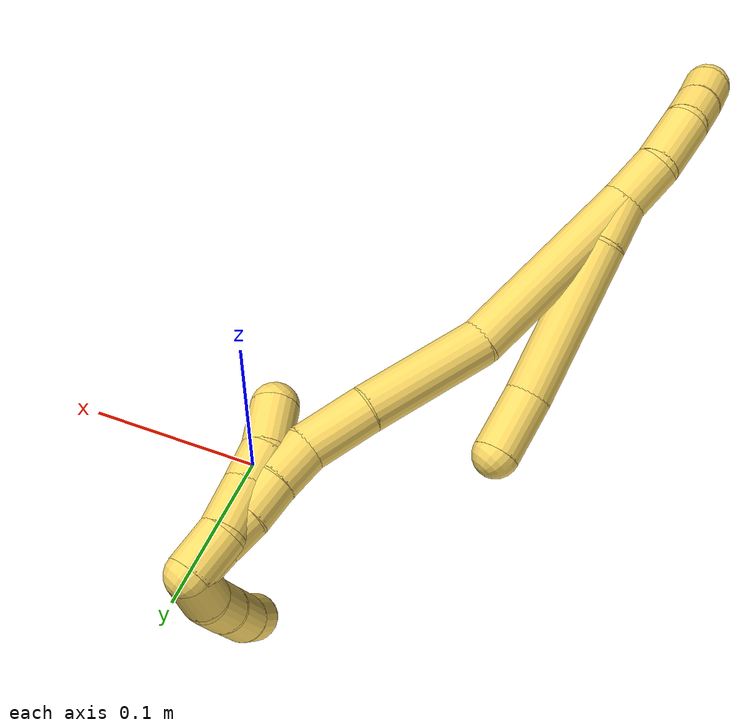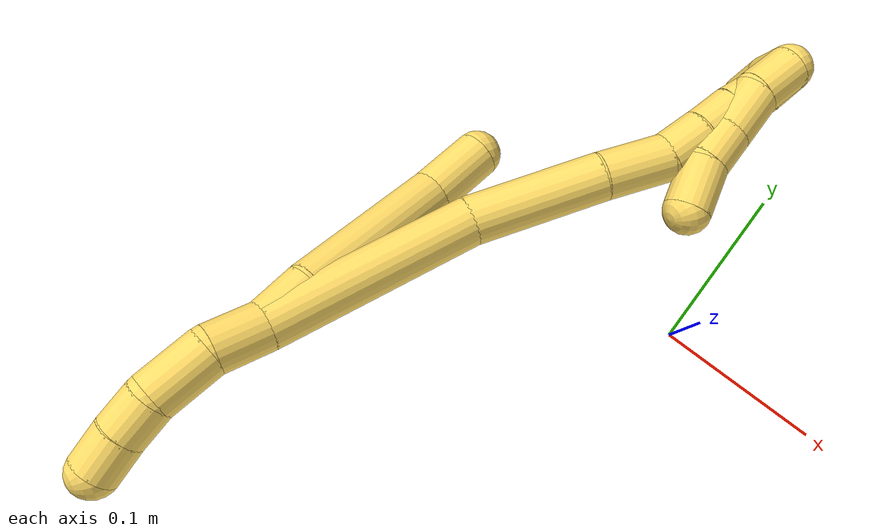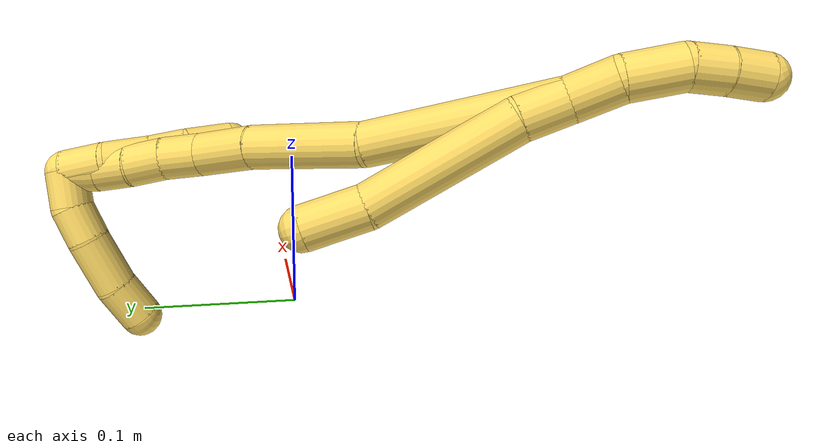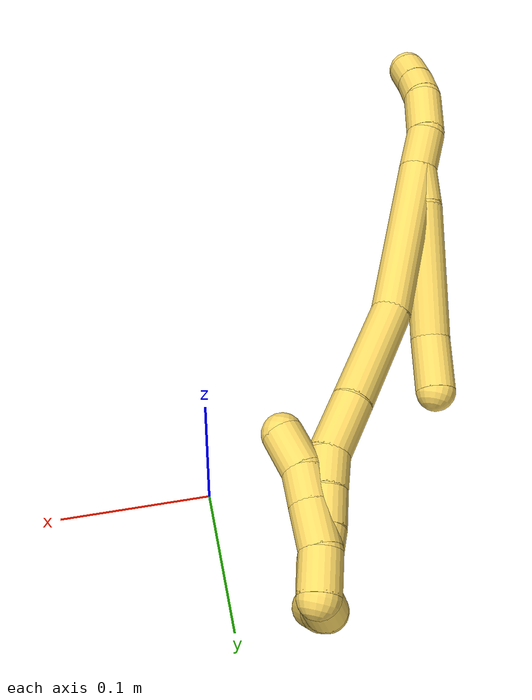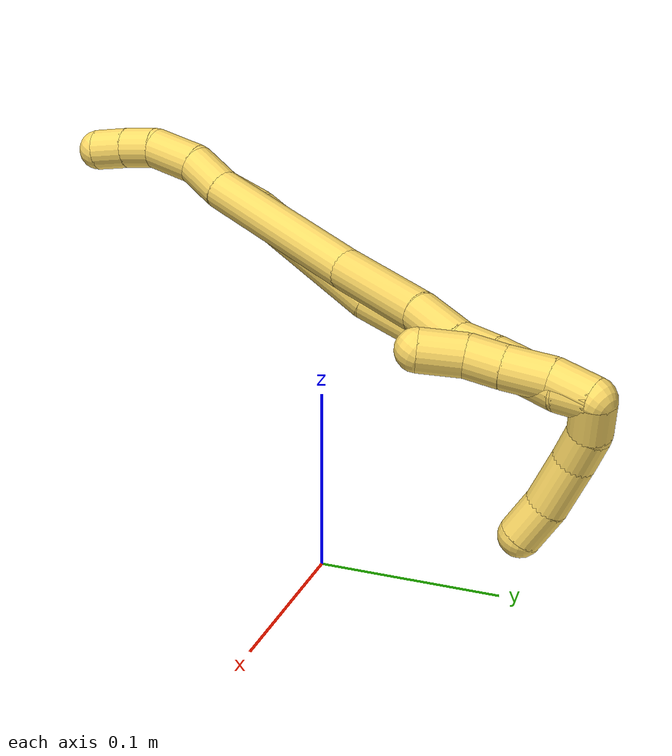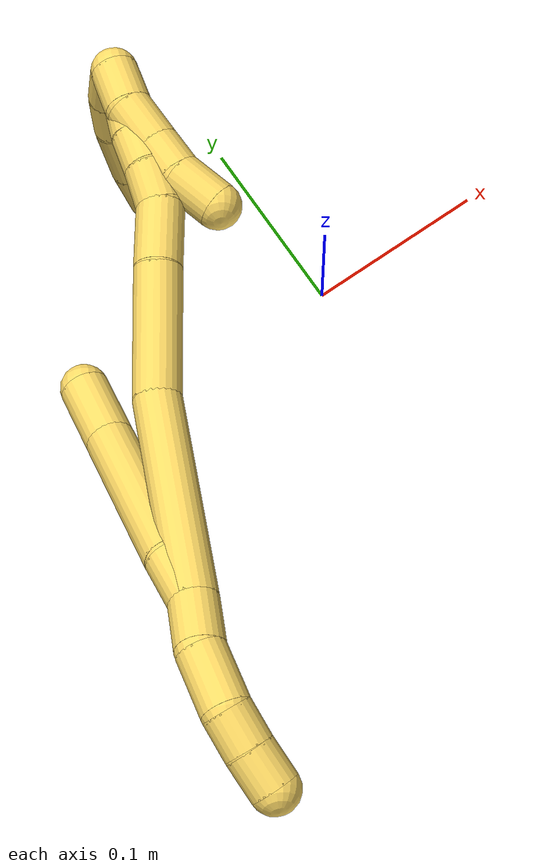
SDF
<sdf version="1.7">
 <world name="default">
  <model name="5">
   <static>0</static>
   <link name="5">
    <collision name="collision-cylinder-e_1_2_8">
     <pose>-0.001141 0.003748 -0.012857 -2.85793 -0.085017 0.579016</pose>
     <geometry><cylinder><radius>0.0125</radius><length>0.026881</length></cylinder></geometry>
     <surface>
      <friction><ode><mu>1.16</mu><mu2>1.16</mu2><slip1>0</slip1><slip2>0</slip2></ode></friction>
      <contact><ode><kp>1e+06</kp><kd>1</kd><max_vel>0</max_vel><min_depth>0.001</min_depth></ode></contact>
     </surface>
    </collision>
    <visual name="visual-cylinder-e_1_2_8">
     <pose>-0.001141 0.003748 -0.012857 -2.85793 -0.085017 0.579016</pose>
     <geometry><cylinder><radius>0.0125</radius><length>0.026881</length></cylinder></geometry>
     <material><ambient>1 0.858824 0.4 1</ambient></material>
    </visual>
    <collision name="collision-cylinder-e_2_8_9">
     <pose>-0.01193 0.014786 -0.068 -2.97087 -0.221148 1.82837</pose>
     <geometry><cylinder><radius>0.0125</radius><length>0.087961</length></cylinder></geometry>
     <surface>
      <friction><ode><mu>1.16</mu><mu2>1.16</mu2><slip1>0</slip1><slip2>0</slip2></ode></friction>
      <contact><ode><kp>1e+06</kp><kd>1</kd><max_vel>0</max_vel><min_depth>0.001</min_depth></ode></contact>
     </surface>
    </collision>
    <visual name="visual-cylinder-e_2_8_9">
     <pose>-0.01193 0.014786 -0.068 -2.97087 -0.221148 1.82837</pose>
     <geometry><cylinder><radius>0.0125</radius><length>0.087961</length></cylinder></geometry>
     <material><ambient>1 0.858824 0.4 1</ambient></material>
    </visual>
    <collision name="collision-cylinder-e_3_9_6">
     <pose>-0.022236 0.026588 -0.127263 -2.88185 -0.037484 0.285092</pose>
     <geometry><cylinder><radius>0.0125</radius><length>0.035157</length></cylinder></geometry>
     <surface>
      <friction><ode><mu>1.16</mu><mu2>1.16</mu2><slip1>0</slip1><slip2>0</slip2></ode></friction>
      <contact><ode><kp>1e+06</kp><kd>1</kd><max_vel>0</max_vel><min_depth>0.001</min_depth></ode></contact>
     </surface>
    </collision>
    <visual name="visual-cylinder-e_3_9_6">
     <pose>-0.022236 0.026588 -0.127263 -2.88185 -0.037484 0.285092</pose>
     <geometry><cylinder><radius>0.0125</radius><length>0.035157</length></cylinder></geometry>
     <material><ambient>1 0.858824 0.4 1</ambient></material>
    </visual>
    <collision name="collision-cylinder-e_1_2_10">
     <pose>0.000294 0.000391 0.013736 -0.028491 0.021357 -0.000304</pose>
     <geometry><cylinder><radius>0.0125</radius><length>0.027489</length></cylinder></geometry>
     <surface>
      <friction><ode><mu>1.16</mu><mu2>1.16</mu2><slip1>0</slip1><slip2>0</slip2></ode></friction>
      <contact><ode><kp>1e+06</kp><kd>1</kd><max_vel>0</max_vel><min_depth>0.001</min_depth></ode></contact>
     </surface>
    </collision>
    <visual name="visual-cylinder-e_1_2_10">
     <pose>0.000294 0.000391 0.013736 -0.028491 0.021357 -0.000304</pose>
     <geometry><cylinder><radius>0.0125</radius><length>0.027489</length></cylinder></geometry>
     <material><ambient>1 0.858824 0.4 1</ambient></material>
    </visual>
    <collision name="collision-cylinder-e_2_10_11">
     <pose>-0.001081 -0.003388 0.042432 0.271875 -0.107014 -0.014651</pose>
     <geometry><cylinder><radius>0.0125</radius><length>0.031239</length></cylinder></geometry>
     <surface>
      <friction><ode><mu>1.16</mu><mu2>1.16</mu2><slip1>0</slip1><slip2>0</slip2></ode></friction>
      <contact><ode><kp>1e+06</kp><kd>1</kd><max_vel>0</max_vel><min_depth>0.001</min_depth></ode></contact>
     </surface>
    </collision>
    <visual name="visual-cylinder-e_2_10_11">
     <pose>-0.001081 -0.003388 0.042432 0.271875 -0.107014 -0.014651</pose>
     <geometry><cylinder><radius>0.0125</radius><length>0.031239</length></cylinder></geometry>
     <material><ambient>1 0.858824 0.4 1</ambient></material>
    </visual>
    <collision name="collision-cylinder-e_3_11_12">
     <pose>-0.006022 -0.012389 0.065808 0.521114 -0.325274 -0.087441</pose>
     <geometry><cylinder><radius>0.0125</radius><length>0.020483</length></cylinder></geometry>
     <surface>
      <friction><ode><mu>1.16</mu><mu2>1.16</mu2><slip1>0</slip1><slip2>0</slip2></ode></friction>
      <contact><ode><kp>1e+06</kp><kd>1</kd><max_vel>0</max_vel><min_depth>0.001</min_depth></ode></contact>
     </surface>
    </collision>
    <visual name="visual-cylinder-e_3_11_12">
     <pose>-0.006022 -0.012389 0.065808 0.521114 -0.325274 -0.087441</pose>
     <geometry><cylinder><radius>0.0125</radius><length>0.020483</length></cylinder></geometry>
     <material><ambient>1 0.858824 0.4 1</ambient></material>
    </visual>
    <collision name="collision-cylinder-e_4_12_5">
     <pose>-0.012727 -0.022791 0.082301 0.603737 -0.33643 -0.10566</pose>
     <geometry><cylinder><radius>0.0125</radius><length>0.020788</length></cylinder></geometry>
     <surface>
      <friction><ode><mu>1.16</mu><mu2>1.16</mu2><slip1>0</slip1><slip2>0</slip2></ode></friction>
      <contact><ode><kp>1e+06</kp><kd>1</kd><max_vel>0</max_vel><min_depth>0.001</min_depth></ode></contact>
     </surface>
    </collision>
    <visual name="visual-cylinder-e_4_12_5">
     <pose>-0.012727 -0.022791 0.082301 0.603737 -0.33643 -0.10566</pose>
     <geometry><cylinder><radius>0.0125</radius><length>0.020788</length></cylinder></geometry>
     <material><ambient>1 0.858824 0.4 1</ambient></material>
    </visual>
    <collision name="collision-cylinder-e_1_2_13">
     <pose>0.007172 0.002886 -0.054104 -3.08829 0.131606 -2.37281</pose>
     <geometry><cylinder><radius>0.0125</radius><length>0.109306</length></cylinder></geometry>
     <surface>
      <friction><ode><mu>1.16</mu><mu2>1.16</mu2><slip1>0</slip1><slip2>0</slip2></ode></friction>
      <contact><ode><kp>1e+06</kp><kd>1</kd><max_vel>0</max_vel><min_depth>0.001</min_depth></ode></contact>
     </surface>
    </collision>
    <visual name="visual-cylinder-e_1_2_13">
     <pose>0.007172 0.002886 -0.054104 -3.08829 0.131606 -2.37281</pose>
     <geometry><cylinder><radius>0.0125</radius><length>0.109306</length></cylinder></geometry>
     <material><ambient>1 0.858824 0.4 1</ambient></material>
    </visual>
    <collision name="collision-cylinder-e_2_13_14">
     <pose>0.025784 0.00362 -0.141038 3.07612 0.334629 2.75852</pose>
     <geometry><cylinder><radius>0.0125</radius><length>0.069667</length></cylinder></geometry>
     <surface>
      <friction><ode><mu>1.16</mu><mu2>1.16</mu2><slip1>0</slip1><slip2>0</slip2></ode></friction>
      <contact><ode><kp>1e+06</kp><kd>1</kd><max_vel>0</max_vel><min_depth>0.001</min_depth></ode></contact>
     </surface>
    </collision>
    <visual name="visual-cylinder-e_2_13_14">
     <pose>0.025784 0.00362 -0.141038 3.07612 0.334629 2.75852</pose>
     <geometry><cylinder><radius>0.0125</radius><length>0.069667</length></cylinder></geometry>
     <material><ambient>1 0.858824 0.4 1</ambient></material>
    </visual>
    <collision name="collision-cylinder-e_3_14_15">
     <pose>0.041546 -0.000557 -0.191177 3.02514 0.243148 2.25127</pose>
     <geometry><cylinder><radius>0.0125</radius><length>0.035909</length></cylinder></geometry>
     <surface>
      <friction><ode><mu>1.16</mu><mu2>1.16</mu2><slip1>0</slip1><slip2>0</slip2></ode></friction>
      <contact><ode><kp>1e+06</kp><kd>1</kd><max_vel>0</max_vel><min_depth>0.001</min_depth></ode></contact>
     </surface>
    </collision>
    <visual name="visual-cylinder-e_3_14_15">
     <pose>0.041546 -0.000557 -0.191177 3.02514 0.243148 2.25127</pose>
     <geometry><cylinder><radius>0.0125</radius><length>0.035909</length></cylinder></geometry>
     <material><ambient>1 0.858824 0.4 1</ambient></material>
    </visual>
    <collision name="collision-cylinder-e_4_15_16">
     <pose>0.048191 -0.000312 -0.219576 -2.9397 0.202285 -1.57273</pose>
     <geometry><cylinder><radius>0.0125</radius><length>0.023111</length></cylinder></geometry>
     <surface>
      <friction><ode><mu>1.16</mu><mu2>1.16</mu2><slip1>0</slip1><slip2>0</slip2></ode></friction>
      <contact><ode><kp>1e+06</kp><kd>1</kd><max_vel>0</max_vel><min_depth>0.001</min_depth></ode></contact>
     </surface>
    </collision>
    <visual name="visual-cylinder-e_4_15_16">
     <pose>0.048191 -0.000312 -0.219576 -2.9397 0.202285 -1.57273</pose>
     <geometry><cylinder><radius>0.0125</radius><length>0.023111</length></cylinder></geometry>
     <material><ambient>1 0.858824 0.4 1</ambient></material>
    </visual>
    <collision name="collision-cylinder-e_5_16_17">
     <pose>0.05162 0.004189 -0.241162 -2.93216 0.10286 -0.910873</pose>
     <geometry><cylinder><radius>0.0125</radius><length>0.021576</length></cylinder></geometry>
     <surface>
      <friction><ode><mu>1.16</mu><mu2>1.16</mu2><slip1>0</slip1><slip2>0</slip2></ode></friction>
      <contact><ode><kp>1e+06</kp><kd>1</kd><max_vel>0</max_vel><min_depth>0.001</min_depth></ode></contact>
     </surface>
    </collision>
    <visual name="visual-cylinder-e_5_16_17">
     <pose>0.05162 0.004189 -0.241162 -2.93216 0.10286 -0.910873</pose>
     <geometry><cylinder><radius>0.0125</radius><length>0.021576</length></cylinder></geometry>
     <material><ambient>1 0.858824 0.4 1</ambient></material>
    </visual>
    <collision name="collision-cylinder-e_6_17_18">
     <pose>0.054626 0.007638 -0.261533 -3.01881 0.188497 -1.98845</pose>
     <geometry><cylinder><radius>0.0125</radius><length>0.020256</length></cylinder></geometry>
     <surface>
      <friction><ode><mu>1.16</mu><mu2>1.16</mu2><slip1>0</slip1><slip2>0</slip2></ode></friction>
      <contact><ode><kp>1e+06</kp><kd>1</kd><max_vel>0</max_vel><min_depth>0.001</min_depth></ode></contact>
     </surface>
    </collision>
    <visual name="visual-cylinder-e_6_17_18">
     <pose>0.054626 0.007638 -0.261533 -3.01881 0.188497 -1.98845</pose>
     <geometry><cylinder><radius>0.0125</radius><length>0.020256</length></cylinder></geometry>
     <material><ambient>1 0.858824 0.4 1</ambient></material>
    </visual>
    <collision name="collision-cylinder-e_7_18_1">
     <pose>0.059105 0.01174 -0.280722 -2.84144 0.258747 -1.42099</pose>
     <geometry><cylinder><radius>0.0125</radius><length>0.020174</length></cylinder></geometry>
     <surface>
      <friction><ode><mu>1.16</mu><mu2>1.16</mu2><slip1>0</slip1><slip2>0</slip2></ode></friction>
      <contact><ode><kp>1e+06</kp><kd>1</kd><max_vel>0</max_vel><min_depth>0.001</min_depth></ode></contact>
     </surface>
    </collision>
    <visual name="visual-cylinder-e_7_18_1">
     <pose>0.059105 0.01174 -0.280722 -2.84144 0.258747 -1.42099</pose>
     <geometry><cylinder><radius>0.0125</radius><length>0.020174</length></cylinder></geometry>
     <material><ambient>1 0.858824 0.4 1</ambient></material>
    </visual>
    <collision name="collision-cylinder-e_1_1_19">
     <pose>0.050868 0.013033 -0.29195 2.44805 -1.34474 -2.28938</pose>
     <geometry><cylinder><radius>0.0125</radius><length>0.022199</length></cylinder></geometry>
     <surface>
      <friction><ode><mu>1.16</mu><mu2>1.16</mu2><slip1>0</slip1><slip2>0</slip2></ode></friction>
      <contact><ode><kp>1e+06</kp><kd>1</kd><max_vel>0</max_vel><min_depth>0.001</min_depth></ode></contact>
     </surface>
    </collision>
    <visual name="visual-cylinder-e_1_1_19">
     <pose>0.050868 0.013033 -0.29195 2.44805 -1.34474 -2.28938</pose>
     <geometry><cylinder><radius>0.0125</radius><length>0.022199</length></cylinder></geometry>
     <material><ambient>1 0.858824 0.4 1</ambient></material>
    </visual>
    <collision name="collision-cylinder-e_2_19_20">
     <pose>0.029976 0.008024 -0.293137 1.36154 -1.2369 -1.04567</pose>
     <geometry><cylinder><radius>0.0125</radius><length>0.021328</length></cylinder></geometry>
     <surface>
      <friction><ode><mu>1.16</mu><mu2>1.16</mu2><slip1>0</slip1><slip2>0</slip2></ode></friction>
      <contact><ode><kp>1e+06</kp><kd>1</kd><max_vel>0</max_vel><min_depth>0.001</min_depth></ode></contact>
     </surface>
    </collision>
    <visual name="visual-cylinder-e_2_19_20">
     <pose>0.029976 0.008024 -0.293137 1.36154 -1.2369 -1.04567</pose>
     <geometry><cylinder><radius>0.0125</radius><length>0.021328</length></cylinder></geometry>
     <material><ambient>1 0.858824 0.4 1</ambient></material>
    </visual>
    <collision name="collision-cylinder-e_3_20_21">
     <pose>0.005613 -0.002794 -0.291769 1.48419 -1.09144 -1.01609</pose>
     <geometry><cylinder><radius>0.0125</radius><length>0.032207</length></cylinder></geometry>
     <surface>
      <friction><ode><mu>1.16</mu><mu2>1.16</mu2><slip1>0</slip1><slip2>0</slip2></ode></friction>
      <contact><ode><kp>1e+06</kp><kd>1</kd><max_vel>0</max_vel><min_depth>0.001</min_depth></ode></contact>
     </surface>
    </collision>
    <visual name="visual-cylinder-e_3_20_21">
     <pose>0.005613 -0.002794 -0.291769 1.48419 -1.09144 -1.01609</pose>
     <geometry><cylinder><radius>0.0125</radius><length>0.032207</length></cylinder></geometry>
     <material><ambient>1 0.858824 0.4 1</ambient></material>
    </visual>
    <collision name="collision-cylinder-e_4_21_4">
     <pose>-0.018511 -0.01711 -0.289505 1.34054 -0.945254 -0.770107</pose>
     <geometry><cylinder><radius>0.0125</radius><length>0.024266</length></cylinder></geometry>
     <surface>
      <friction><ode><mu>1.16</mu><mu2>1.16</mu2><slip1>0</slip1><slip2>0</slip2></ode></friction>
      <contact><ode><kp>1e+06</kp><kd>1</kd><max_vel>0</max_vel><min_depth>0.001</min_depth></ode></contact>
     </surface>
    </collision>
    <visual name="visual-cylinder-e_4_21_4">
     <pose>-0.018511 -0.01711 -0.289505 1.34054 -0.945254 -0.770107</pose>
     <geometry><cylinder><radius>0.0125</radius><length>0.024266</length></cylinder></geometry>
     <material><ambient>1 0.858824 0.4 1</ambient></material>
    </visual>
    <collision name="collision-cylinder-e_1_1_22">
     <pose>0.060397 0.012069 -0.277809 0.205918 -0.102746 -0.010625</pose>
     <geometry><cylinder><radius>0.0125</radius><length>0.025117</length></cylinder></geometry>
     <surface>
      <friction><ode><mu>1.16</mu><mu2>1.16</mu2><slip1>0</slip1><slip2>0</slip2></ode></friction>
      <contact><ode><kp>1e+06</kp><kd>1</kd><max_vel>0</max_vel><min_depth>0.001</min_depth></ode></contact>
     </surface>
    </collision>
    <visual name="visual-cylinder-e_1_1_22">
     <pose>0.060397 0.012069 -0.277809 0.205918 -0.102746 -0.010625</pose>
     <geometry><cylinder><radius>0.0125</radius><length>0.025117</length></cylinder></geometry>
     <material><ambient>1 0.858824 0.4 1</ambient></material>
    </visual>
    <collision name="collision-cylinder-e_2_22_23">
     <pose>0.057803 0.00333 -0.253597 0.476391 -0.096547 -0.023459</pose>
     <geometry><cylinder><radius>0.0125</radius><length>0.027097</length></cylinder></geometry>
     <surface>
      <friction><ode><mu>1.16</mu><mu2>1.16</mu2><slip1>0</slip1><slip2>0</slip2></ode></friction>
      <contact><ode><kp>1e+06</kp><kd>1</kd><max_vel>0</max_vel><min_depth>0.001</min_depth></ode></contact>
     </surface>
    </collision>
    <visual name="visual-cylinder-e_2_22_23">
     <pose>0.057803 0.00333 -0.253597 0.476391 -0.096547 -0.023459</pose>
     <geometry><cylinder><radius>0.0125</radius><length>0.027097</length></cylinder></geometry>
     <material><ambient>1 0.858824 0.4 1</ambient></material>
    </visual>
    <collision name="collision-cylinder-e_3_23_24">
     <pose>0.056017 -0.00745 -0.232047 0.447905 -0.045256 -0.01031</pose>
     <geometry><cylinder><radius>0.0125</radius><length>0.021247</length></cylinder></geometry>
     <surface>
      <friction><ode><mu>1.16</mu><mu2>1.16</mu2><slip1>0</slip1><slip2>0</slip2></ode></friction>
      <contact><ode><kp>1e+06</kp><kd>1</kd><max_vel>0</max_vel><min_depth>0.001</min_depth></ode></contact>
     </surface>
    </collision>
    <visual name="visual-cylinder-e_3_23_24">
     <pose>0.056017 -0.00745 -0.232047 0.447905 -0.045256 -0.01031</pose>
     <geometry><cylinder><radius>0.0125</radius><length>0.021247</length></cylinder></geometry>
     <material><ambient>1 0.858824 0.4 1</ambient></material>
    </visual>
    <collision name="collision-cylinder-e_4_24_3">
     <pose>0.055366 -0.020852 -0.212556 0.72579 -0.012788 -0.004856</pose>
     <geometry><cylinder><radius>0.0125</radius><length>0.026539</length></cylinder></geometry>
     <surface>
      <friction><ode><mu>1.16</mu><mu2>1.16</mu2><slip1>0</slip1><slip2>0</slip2></ode></friction>
      <contact><ode><kp>1e+06</kp><kd>1</kd><max_vel>0</max_vel><min_depth>0.001</min_depth></ode></contact>
     </surface>
    </collision>
    <visual name="visual-cylinder-e_4_24_3">
     <pose>0.055366 -0.020852 -0.212556 0.72579 -0.012788 -0.004856</pose>
     <geometry><cylinder><radius>0.0125</radius><length>0.026539</length></cylinder></geometry>
     <material><ambient>1 0.858824 0.4 1</ambient></material>
    </visual>
    <collision name="collision-sphere-3">
     <pose>0.055197 -0.029659 -0.202632 0 -0 0</pose>
     <geometry><sphere><radius>0.0125</radius></sphere></geometry>
     <surface>
      <friction><ode><mu>1.16</mu><mu2>1.16</mu2><slip1>0</slip1><slip2>0</slip2></ode></friction>
      <contact><ode><kp>1e+06</kp><kd>1</kd><max_vel>0</max_vel><min_depth>0.001</min_depth></ode></contact>
     </surface>
    </collision>
    <visual name="visual-sphere-3">
     <pose>0.055197 -0.029659 -0.202632 0 -0 0</pose>
     <geometry><sphere><radius>0.0125</radius></sphere></geometry>
     <material><ambient>1 0.858824 0.4 1</ambient></material>
    </visual>
    <collision name="collision-sphere-24">
     <pose>0.055536 -0.012046 -0.222481 0 -0 0</pose>
     <geometry><sphere><radius>0.0125</radius></sphere></geometry>
     <surface>
      <friction><ode><mu>1.16</mu><mu2>1.16</mu2><slip1>0</slip1><slip2>0</slip2></ode></friction>
      <contact><ode><kp>1e+06</kp><kd>1</kd><max_vel>0</max_vel><min_depth>0.001</min_depth></ode></contact>
     </surface>
    </collision>
    <visual name="visual-sphere-24">
     <pose>0.055536 -0.012046 -0.222481 0 -0 0</pose>
     <geometry><sphere><radius>0.0125</radius></sphere></geometry>
     <material><ambient>1 0.858824 0.4 1</ambient></material>
    </visual>
    <collision name="collision-sphere-23">
     <pose>0.056497 -0.002854 -0.241612 0 -0 0</pose>
     <geometry><sphere><radius>0.0125</radius></sphere></geometry>
     <surface>
      <friction><ode><mu>1.16</mu><mu2>1.16</mu2><slip1>0</slip1><slip2>0</slip2></ode></friction>
      <contact><ode><kp>1e+06</kp><kd>1</kd><max_vel>0</max_vel><min_depth>0.001</min_depth></ode></contact>
     </surface>
    </collision>
    <visual name="visual-sphere-23">
     <pose>0.056497 -0.002854 -0.241612 0 -0 0</pose>
     <geometry><sphere><radius>0.0125</radius></sphere></geometry>
     <material><ambient>1 0.858824 0.4 1</ambient></material>
    </visual>
    <collision name="collision-sphere-22">
     <pose>0.059109 0.009515 -0.265581 0 -0 0</pose>
     <geometry><sphere><radius>0.0125</radius></sphere></geometry>
     <surface>
      <friction><ode><mu>1.16</mu><mu2>1.16</mu2><slip1>0</slip1><slip2>0</slip2></ode></friction>
      <contact><ode><kp>1e+06</kp><kd>1</kd><max_vel>0</max_vel><min_depth>0.001</min_depth></ode></contact>
     </surface>
    </collision>
    <visual name="visual-sphere-22">
     <pose>0.059109 0.009515 -0.265581 0 -0 0</pose>
     <geometry><sphere><radius>0.0125</radius></sphere></geometry>
     <material><ambient>1 0.858824 0.4 1</ambient></material>
    </visual>
    <collision name="collision-sphere-4">
     <pose>-0.028347 -0.024027 -0.287884 0 -0 0</pose>
     <geometry><sphere><radius>0.0125</radius></sphere></geometry>
     <surface>
      <friction><ode><mu>1.16</mu><mu2>1.16</mu2><slip1>0</slip1><slip2>0</slip2></ode></friction>
      <contact><ode><kp>1e+06</kp><kd>1</kd><max_vel>0</max_vel><min_depth>0.001</min_depth></ode></contact>
     </surface>
    </collision>
    <visual name="visual-sphere-4">
     <pose>-0.028347 -0.024027 -0.287884 0 -0 0</pose>
     <geometry><sphere><radius>0.0125</radius></sphere></geometry>
     <material><ambient>1 0.858824 0.4 1</ambient></material>
    </visual>
    <collision name="collision-sphere-21">
     <pose>-0.008676 -0.010193 -0.291127 0 -0 0</pose>
     <geometry><sphere><radius>0.0125</radius></sphere></geometry>
     <surface>
      <friction><ode><mu>1.16</mu><mu2>1.16</mu2><slip1>0</slip1><slip2>0</slip2></ode></friction>
      <contact><ode><kp>1e+06</kp><kd>1</kd><max_vel>0</max_vel><min_depth>0.001</min_depth></ode></contact>
     </surface>
    </collision>
    <visual name="visual-sphere-21">
     <pose>-0.008676 -0.010193 -0.291127 0 -0 0</pose>
     <geometry><sphere><radius>0.0125</radius></sphere></geometry>
     <material><ambient>1 0.858824 0.4 1</ambient></material>
    </visual>
    <collision name="collision-sphere-20">
     <pose>0.019901 0.004605 -0.292411 0 -0 0</pose>
     <geometry><sphere><radius>0.0125</radius></sphere></geometry>
     <surface>
      <friction><ode><mu>1.16</mu><mu2>1.16</mu2><slip1>0</slip1><slip2>0</slip2></ode></friction>
      <contact><ode><kp>1e+06</kp><kd>1</kd><max_vel>0</max_vel><min_depth>0.001</min_depth></ode></contact>
     </surface>
    </collision>
    <visual name="visual-sphere-20">
     <pose>0.019901 0.004605 -0.292411 0 -0 0</pose>
     <geometry><sphere><radius>0.0125</radius></sphere></geometry>
     <material><ambient>1 0.858824 0.4 1</ambient></material>
    </visual>
    <collision name="collision-sphere-11">
     <pose>-0.00275 -0.007558 0.057392 0 -0 0</pose>
     <geometry><sphere><radius>0.0125</radius></sphere></geometry>
     <surface>
      <friction><ode><mu>1.16</mu><mu2>1.16</mu2><slip1>0</slip1><slip2>0</slip2></ode></friction>
      <contact><ode><kp>1e+06</kp><kd>1</kd><max_vel>0</max_vel><min_depth>0.001</min_depth></ode></contact>
     </surface>
    </collision>
    <visual name="visual-sphere-11">
     <pose>-0.00275 -0.007558 0.057392 0 -0 0</pose>
     <geometry><sphere><radius>0.0125</radius></sphere></geometry>
     <material><ambient>1 0.858824 0.4 1</ambient></material>
    </visual>
    <collision name="collision-sphere-10">
     <pose>0.000587 0.000783 0.027472 0 -0 0</pose>
     <geometry><sphere><radius>0.0125</radius></sphere></geometry>
     <surface>
      <friction><ode><mu>1.16</mu><mu2>1.16</mu2><slip1>0</slip1><slip2>0</slip2></ode></friction>
      <contact><ode><kp>1e+06</kp><kd>1</kd><max_vel>0</max_vel><min_depth>0.001</min_depth></ode></contact>
     </surface>
    </collision>
    <visual name="visual-sphere-10">
     <pose>0.000587 0.000783 0.027472 0 -0 0</pose>
     <geometry><sphere><radius>0.0125</radius></sphere></geometry>
     <material><ambient>1 0.858824 0.4 1</ambient></material>
    </visual>
    <collision name="collision-sphere-6">
     <pose>-0.022894 0.031099 -0.14424 0 -0 0</pose>
     <geometry><sphere><radius>0.0125</radius></sphere></geometry>
     <surface>
      <friction><ode><mu>1.16</mu><mu2>1.16</mu2><slip1>0</slip1><slip2>0</slip2></ode></friction>
      <contact><ode><kp>1e+06</kp><kd>1</kd><max_vel>0</max_vel><min_depth>0.001</min_depth></ode></contact>
     </surface>
    </collision>
    <visual name="visual-sphere-6">
     <pose>-0.022894 0.031099 -0.14424 0 -0 0</pose>
     <geometry><sphere><radius>0.0125</radius></sphere></geometry>
     <material><ambient>1 0.858824 0.4 1</ambient></material>
    </visual>
    <collision name="collision-sphere-9">
     <pose>-0.021577 0.022076 -0.110286 0 -0 0</pose>
     <geometry><sphere><radius>0.0125</radius></sphere></geometry>
     <surface>
      <friction><ode><mu>1.16</mu><mu2>1.16</mu2><slip1>0</slip1><slip2>0</slip2></ode></friction>
      <contact><ode><kp>1e+06</kp><kd>1</kd><max_vel>0</max_vel><min_depth>0.001</min_depth></ode></contact>
     </surface>
    </collision>
    <visual name="visual-sphere-9">
     <pose>-0.021577 0.022076 -0.110286 0 -0 0</pose>
     <geometry><sphere><radius>0.0125</radius></sphere></geometry>
     <material><ambient>1 0.858824 0.4 1</ambient></material>
    </visual>
    <collision name="collision-sphere-2">
     <geometry><sphere><radius>0.0125</radius></sphere></geometry>
     <surface>
      <friction><ode><mu>1.16</mu><mu2>1.16</mu2><slip1>0</slip1><slip2>0</slip2></ode></friction>
      <contact><ode><kp>1e+06</kp><kd>1</kd><max_vel>0</max_vel><min_depth>0.001</min_depth></ode></contact>
     </surface>
    </collision>
    <visual name="visual-sphere-2">
     <geometry><sphere><radius>0.0125</radius></sphere></geometry>
     <material><ambient>1 0.858824 0.4 1</ambient></material>
    </visual>
    <collision name="collision-sphere-19">
     <pose>0.040051 0.011442 -0.293863 0 -0 0</pose>
     <geometry><sphere><radius>0.0125</radius></sphere></geometry>
     <surface>
      <friction><ode><mu>1.16</mu><mu2>1.16</mu2><slip1>0</slip1><slip2>0</slip2></ode></friction>
      <contact><ode><kp>1e+06</kp><kd>1</kd><max_vel>0</max_vel><min_depth>0.001</min_depth></ode></contact>
     </surface>
    </collision>
    <visual name="visual-sphere-19">
     <pose>0.040051 0.011442 -0.293863 0 -0 0</pose>
     <geometry><sphere><radius>0.0125</radius></sphere></geometry>
     <material><ambient>1 0.858824 0.4 1</ambient></material>
    </visual>
    <collision name="collision-sphere-8">
     <pose>-0.002283 0.007496 -0.025714 0 -0 0</pose>
     <geometry><sphere><radius>0.0125</radius></sphere></geometry>
     <surface>
      <friction><ode><mu>1.16</mu><mu2>1.16</mu2><slip1>0</slip1><slip2>0</slip2></ode></friction>
      <contact><ode><kp>1e+06</kp><kd>1</kd><max_vel>0</max_vel><min_depth>0.001</min_depth></ode></contact>
     </surface>
    </collision>
    <visual name="visual-sphere-8">
     <pose>-0.002283 0.007496 -0.025714 0 -0 0</pose>
     <geometry><sphere><radius>0.0125</radius></sphere></geometry>
     <material><ambient>1 0.858824 0.4 1</ambient></material>
    </visual>
    <collision name="collision-sphere-12">
     <pose>-0.009295 -0.017221 0.074224 0 -0 0</pose>
     <geometry><sphere><radius>0.0125</radius></sphere></geometry>
     <surface>
      <friction><ode><mu>1.16</mu><mu2>1.16</mu2><slip1>0</slip1><slip2>0</slip2></ode></friction>
      <contact><ode><kp>1e+06</kp><kd>1</kd><max_vel>0</max_vel><min_depth>0.001</min_depth></ode></contact>
     </surface>
    </collision>
    <visual name="visual-sphere-12">
     <pose>-0.009295 -0.017221 0.074224 0 -0 0</pose>
     <geometry><sphere><radius>0.0125</radius></sphere></geometry>
     <material><ambient>1 0.858824 0.4 1</ambient></material>
    </visual>
    <collision name="collision-sphere-5">
     <pose>-0.016158 -0.028361 0.090378 0 -0 0</pose>
     <geometry><sphere><radius>0.0125</radius></sphere></geometry>
     <surface>
      <friction><ode><mu>1.16</mu><mu2>1.16</mu2><slip1>0</slip1><slip2>0</slip2></ode></friction>
      <contact><ode><kp>1e+06</kp><kd>1</kd><max_vel>0</max_vel><min_depth>0.001</min_depth></ode></contact>
     </surface>
    </collision>
    <visual name="visual-sphere-5">
     <pose>-0.016158 -0.028361 0.090378 0 -0 0</pose>
     <geometry><sphere><radius>0.0125</radius></sphere></geometry>
     <material><ambient>1 0.858824 0.4 1</ambient></material>
    </visual>
    <collision name="collision-sphere-13">
     <pose>0.014344 0.005773 -0.108207 0 -0 0</pose>
     <geometry><sphere><radius>0.0125</radius></sphere></geometry>
     <surface>
      <friction><ode><mu>1.16</mu><mu2>1.16</mu2><slip1>0</slip1><slip2>0</slip2></ode></friction>
      <contact><ode><kp>1e+06</kp><kd>1</kd><max_vel>0</max_vel><min_depth>0.001</min_depth></ode></contact>
     </surface>
    </collision>
    <visual name="visual-sphere-13">
     <pose>0.014344 0.005773 -0.108207 0 -0 0</pose>
     <geometry><sphere><radius>0.0125</radius></sphere></geometry>
     <material><ambient>1 0.858824 0.4 1</ambient></material>
    </visual>
    <collision name="collision-sphere-14">
     <pose>0.037224 0.001467 -0.173869 0 -0 0</pose>
     <geometry><sphere><radius>0.0125</radius></sphere></geometry>
     <surface>
      <friction><ode><mu>1.16</mu><mu2>1.16</mu2><slip1>0</slip1><slip2>0</slip2></ode></friction>
      <contact><ode><kp>1e+06</kp><kd>1</kd><max_vel>0</max_vel><min_depth>0.001</min_depth></ode></contact>
     </surface>
    </collision>
    <visual name="visual-sphere-14">
     <pose>0.037224 0.001467 -0.173869 0 -0 0</pose>
     <geometry><sphere><radius>0.0125</radius></sphere></geometry>
     <material><ambient>1 0.858824 0.4 1</ambient></material>
    </visual>
    <collision name="collision-sphere-15">
     <pose>0.045869 -0.002582 -0.208486 0 -0 0</pose>
     <geometry><sphere><radius>0.0125</radius></sphere></geometry>
     <surface>
      <friction><ode><mu>1.16</mu><mu2>1.16</mu2><slip1>0</slip1><slip2>0</slip2></ode></friction>
      <contact><ode><kp>1e+06</kp><kd>1</kd><max_vel>0</max_vel><min_depth>0.001</min_depth></ode></contact>
     </surface>
    </collision>
    <visual name="visual-sphere-15">
     <pose>0.045869 -0.002582 -0.208486 0 -0 0</pose>
     <geometry><sphere><radius>0.0125</radius></sphere></geometry>
     <material><ambient>1 0.858824 0.4 1</ambient></material>
    </visual>
    <collision name="collision-sphere-16">
     <pose>0.050512 0.001958 -0.230666 0 -0 0</pose>
     <geometry><sphere><radius>0.0125</radius></sphere></geometry>
     <surface>
      <friction><ode><mu>1.16</mu><mu2>1.16</mu2><slip1>0</slip1><slip2>0</slip2></ode></friction>
      <contact><ode><kp>1e+06</kp><kd>1</kd><max_vel>0</max_vel><min_depth>0.001</min_depth></ode></contact>
     </surface>
    </collision>
    <visual name="visual-sphere-16">
     <pose>0.050512 0.001958 -0.230666 0 -0 0</pose>
     <geometry><sphere><radius>0.0125</radius></sphere></geometry>
     <material><ambient>1 0.858824 0.4 1</ambient></material>
    </visual>
    <collision name="collision-sphere-17">
     <pose>0.052728 0.00642 -0.251659 0 -0 0</pose>
     <geometry><sphere><radius>0.0125</radius></sphere></geometry>
     <surface>
      <friction><ode><mu>1.16</mu><mu2>1.16</mu2><slip1>0</slip1><slip2>0</slip2></ode></friction>
      <contact><ode><kp>1e+06</kp><kd>1</kd><max_vel>0</max_vel><min_depth>0.001</min_depth></ode></contact>
     </surface>
    </collision>
    <visual name="visual-sphere-17">
     <pose>0.052728 0.00642 -0.251659 0 -0 0</pose>
     <geometry><sphere><radius>0.0125</radius></sphere></geometry>
     <material><ambient>1 0.858824 0.4 1</ambient></material>
    </visual>
    <collision name="collision-sphere-18">
     <pose>0.056524 0.008857 -0.271407 0 -0 0</pose>
     <geometry><sphere><radius>0.0125</radius></sphere></geometry>
     <surface>
      <friction><ode><mu>1.16</mu><mu2>1.16</mu2><slip1>0</slip1><slip2>0</slip2></ode></friction>
      <contact><ode><kp>1e+06</kp><kd>1</kd><max_vel>0</max_vel><min_depth>0.001</min_depth></ode></contact>
     </surface>
    </collision>
    <visual name="visual-sphere-18">
     <pose>0.056524 0.008857 -0.271407 0 -0 0</pose>
     <geometry><sphere><radius>0.0125</radius></sphere></geometry>
     <material><ambient>1 0.858824 0.4 1</ambient></material>
    </visual>
    <collision name="collision-sphere-1">
     <pose>0.061685 0.014623 -0.290037 0 -0 0</pose>
     <geometry><sphere><radius>0.0125</radius></sphere></geometry>
     <surface>
      <friction><ode><mu>1.16</mu><mu2>1.16</mu2><slip1>0</slip1><slip2>0</slip2></ode></friction>
      <contact><ode><kp>1e+06</kp><kd>1</kd><max_vel>0</max_vel><min_depth>0.001</min_depth></ode></contact>
     </surface>
    </collision>
    <visual name="visual-sphere-1">
     <pose>0.061685 0.014623 -0.290037 0 -0 0</pose>
     <geometry><sphere><radius>0.0125</radius></sphere></geometry>
     <material><ambient>1 0.858824 0.4 1</ambient></material>
    </visual>
    <inertial>
     <pose>0.018088 0.002897 -0.137945 0 -0 0</pose>
     <mass>0.75</mass>
     <inertia>
      <ixx>-0.000116</ixx>
      <ixy>0</ixy>
      <ixz>0</ixz>
      <iyy>0.000131</iyy>
      <iyz>0</iyz>
      <izz>-3e-05</izz>
     </inertia>
    </inertial>
   </link>
   <pose>-0.164184 -0.128044 0.153475 0.665018 -1.06796 0.42062</pose>
  </model>
 </world>
</sdf>
